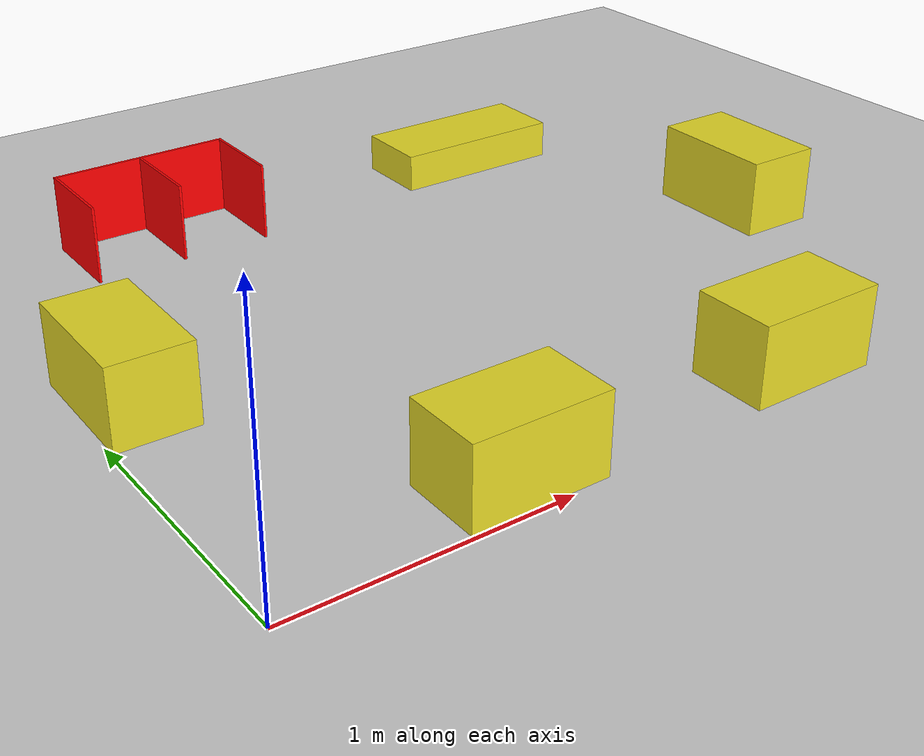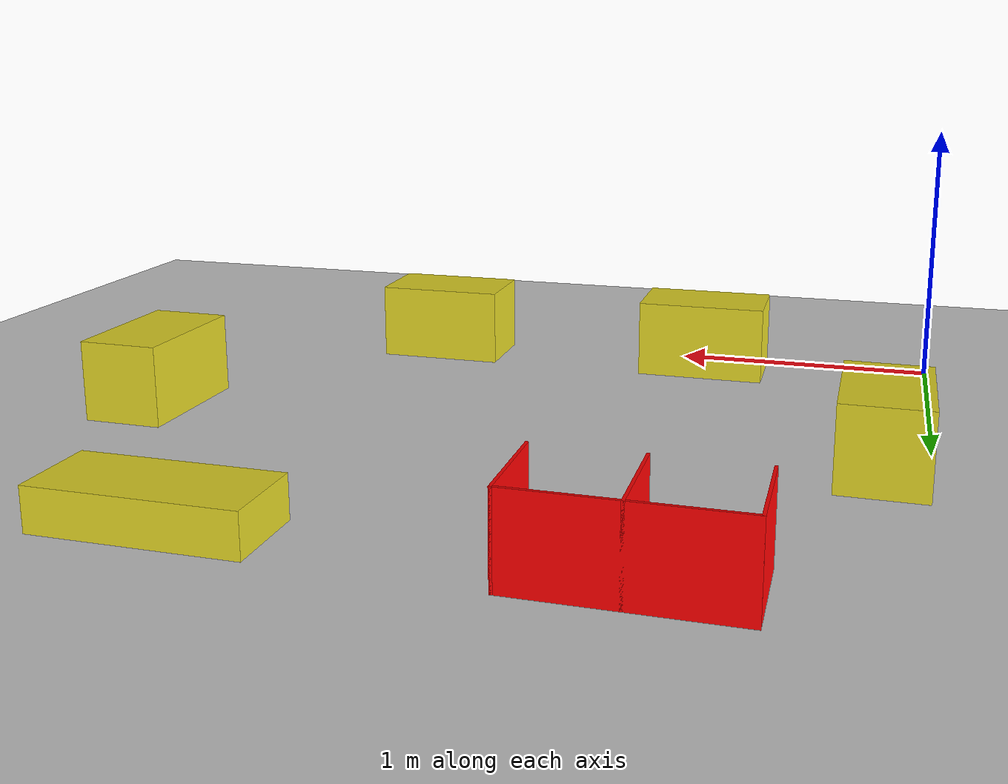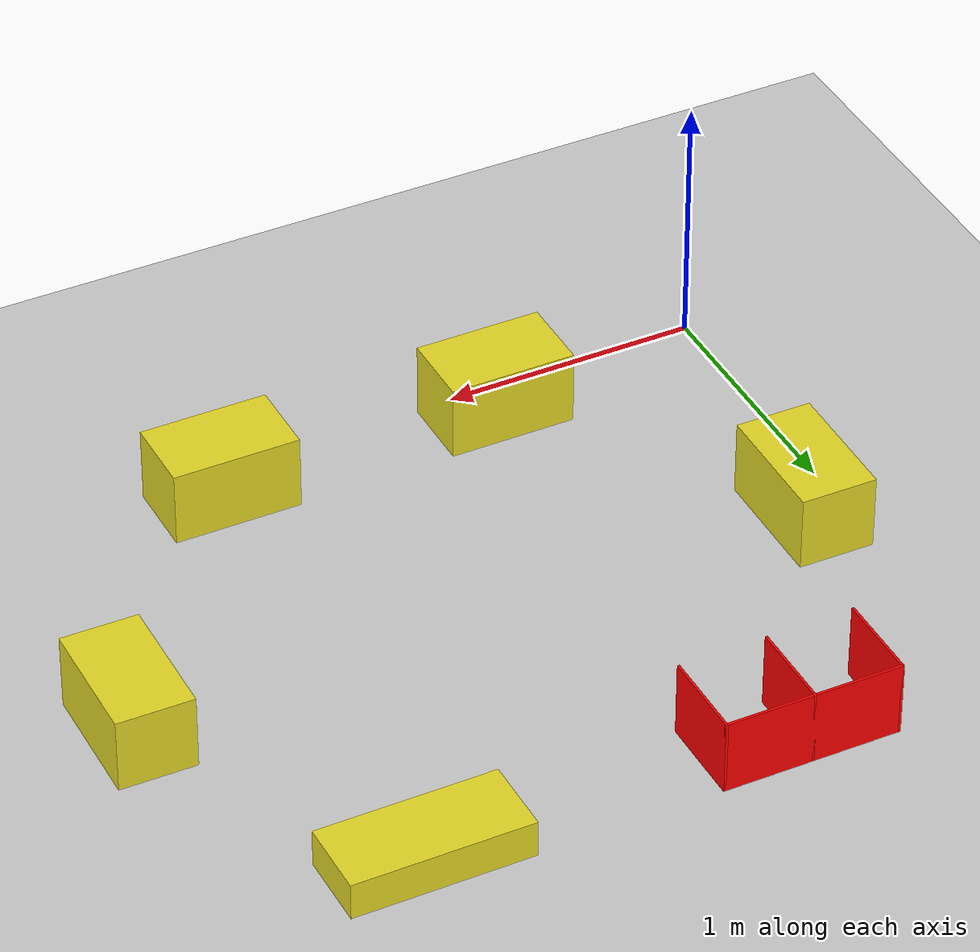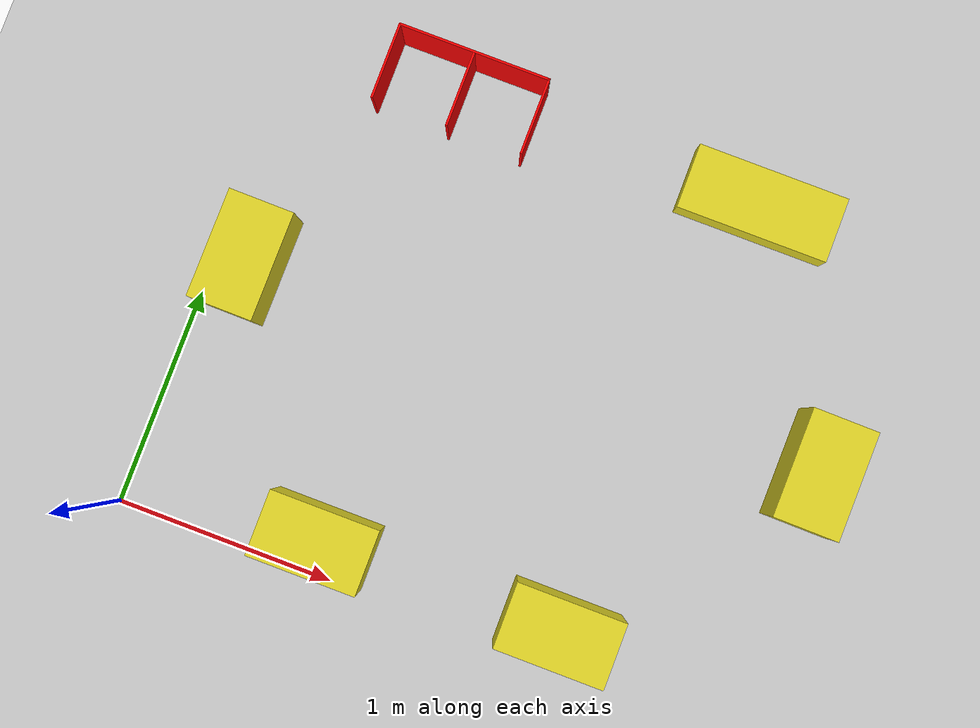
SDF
<sdf version="1.7">
 <world name="default">
  <light name="sun" type="directional">
   <pose>0 0 10 0 -0 0</pose>
   <diffuse>0.8 0.8 0.8 1</diffuse>
   <specular>0.2 0.2 0.2 1</specular>
   <attenuation>
    <range>1000</range>
    <constant>0.9</constant>
    <linear>0.01</linear>
    <quadratic>0.001</quadratic>
   </attenuation>
   <direction>-0.5 0.1 -0.9</direction>
   <spot><inner_angle>0</inner_angle><outer_angle>0</outer_angle><falloff>0</falloff></spot>
  </light>
  <model name="ground_plane">
   <static>1</static>
   <link name="link">
    <collision name="collision">
     <geometry><plane><normal>0 0 1</normal><size>100 100</size></plane></geometry>
     <surface><friction><ode><mu>100</mu><mu2>50</mu2></ode></friction></surface>
    </collision>
    <visual name="visual">
     <cast_shadows>0</cast_shadows>
     <geometry><plane><normal>0 0 1</normal><size>100 100</size></plane></geometry>
     <material>
      <script><uri>file://media/materials/scripts/gazebo.material</uri><name>Gazebo/Grey</name></script>
     </material>
    </visual>
   </link>
  </model>
  <gravity>0 0 -9.8</gravity>
  <magnetic_field>6e-06 2.3e-05 -4.2e-05</magnetic_field>
  <atmosphere type="adiabatic"/>
  <physics type="ode">
   <max_step_size>0.001</max_step_size>
   <real_time_factor>1</real_time_factor>
   <real_time_update_rate>1000</real_time_update_rate>
  </physics>
  <scene><ambient>0.4 0.4 0.4 1</ambient><background>0.7 0.7 0.7 1</background><shadows>1</shadows></scene>
  <audio><device>default</device></audio>
  <spherical_coordinates>
   <surface_model>EARTH_WGS84</surface_model>
   <latitude_deg>0</latitude_deg>
   <longitude_deg>0</longitude_deg>
   <elevation>0</elevation>
   <heading_deg>0</heading_deg>
  </spherical_coordinates>
  <model name="Task1">
   <link name="link_1">
    <inertial>
     <mass>1</mass>
     <inertia>
      <ixx>0.166667</ixx>
      <ixy>0</ixy>
      <ixz>0</ixz>
      <iyy>0.166667</iyy>
      <iyz>0</iyz>
      <izz>0.166667</izz>
     </inertia>
    </inertial>
    <pose>-0.271802 0.003194 0.15 0 0 -1.58255</pose>
    <visual name="visual">
     <geometry><box><size>0.5 0.3 0.3</size></box></geometry>
     <material>
      <lighting>1</lighting>
      <script><uri>file://media/materials/scripts/gazebo.material</uri><name>Gazebo/Yellow</name></script>
      <shader type="pixel"><normal_map>__default__</normal_map></shader>
      <ambient>0 0 1 1</ambient>
      <diffuse>0.7 0.7 0.7 1</diffuse>
      <specular>0.01 0.01 0.01 1</specular>
      <emissive>0 0 0 1</emissive>
     </material>
    </visual>
    <collision name="collision">
     <geometry><box><size>0.5 0.3 0.3</size></box></geometry>
     <surface>
      <friction>
       <ode><mu>1</mu><mu2>1</mu2><fdir1>0 0 0</fdir1><slip1>0</slip1><slip2>0</slip2></ode>
       <torsional>
        <coefficient>1</coefficient>
        <patch_radius>0</patch_radius>
        <surface_radius>0</surface_radius>
        <use_patch_radius>1</use_patch_radius>
        <ode><slip>0</slip></ode>
       </torsional>
      </friction>
      <bounce><restitution_coefficient>0</restitution_coefficient><threshold>1e+06</threshold></bounce>
      <contact>
       <collide_without_contact>0</collide_without_contact>
       <collide_without_contact_bitmask>1</collide_without_contact_bitmask>
       <collide_bitmask>1</collide_bitmask>
       <ode>
        <soft_cfm>0</soft_cfm>
        <soft_erp>0.2</soft_erp>
        <kp>1e+13</kp>
        <kd>1</kd>
        <max_vel>0.01</max_vel>
        <min_depth>0</min_depth>
       </ode>
       <bullet>
        <split_impulse>1</split_impulse>
        <split_impulse_penetration_threshold>-0.01</split_impulse_penetration_threshold>
        <soft_cfm>0</soft_cfm>
        <soft_erp>0.2</soft_erp>
        <kp>1e+13</kp>
        <kd>1</kd>
       </bullet>
      </contact>
     </surface>
    </collision>
   </link>
   <static>0</static>
   <pose>3.10821 1.20106 -0 0 -0 0</pose>
  </model>
  <model name="Task2">
   <link name="link_1">
    <inertial>
     <mass>1</mass>
     <inertia>
      <ixx>0.166667</ixx>
      <ixy>0</ixy>
      <ixz>0</ixz>
      <iyy>0.166667</iyy>
      <iyz>0</iyz>
      <izz>0.166667</izz>
     </inertia>
    </inertial>
    <pose>0 0 0.05 0 -0 0</pose>
    <visual name="visual">
     <geometry><box><size>0.5 0.3 0.3</size></box></geometry>
     <material>
      <lighting>1</lighting>
      <script><uri>file://media/materials/scripts/gazebo.material</uri><name>Gazebo/Yellow</name></script>
      <shader type="pixel"><normal_map>__default__</normal_map></shader>
      <ambient>1 1 0 1</ambient>
      <diffuse>0.7 0.7 0.7 1</diffuse>
      <specular>0.01 0.01 0.01 1</specular>
      <emissive>0 0 0 1</emissive>
     </material>
    </visual>
    <collision name="collision">
     <geometry><box><size>0.5 0.3 0.3</size></box></geometry>
     <surface>
      <friction>
       <ode><mu>1</mu><mu2>1</mu2><fdir1>0 0 0</fdir1><slip1>0</slip1><slip2>0</slip2></ode>
       <torsional>
        <coefficient>1</coefficient>
        <patch_radius>0</patch_radius>
        <surface_radius>0</surface_radius>
        <use_patch_radius>1</use_patch_radius>
        <ode><slip>0</slip></ode>
       </torsional>
      </friction>
      <bounce><restitution_coefficient>0</restitution_coefficient><threshold>1e+06</threshold></bounce>
      <contact>
       <collide_without_contact>0</collide_without_contact>
       <collide_without_contact_bitmask>1</collide_without_contact_bitmask>
       <collide_bitmask>1</collide_bitmask>
       <ode>
        <soft_cfm>0</soft_cfm>
        <soft_erp>0.2</soft_erp>
        <kp>1e+13</kp>
        <kd>1</kd>
        <max_vel>0.01</max_vel>
        <min_depth>0</min_depth>
       </ode>
       <bullet>
        <split_impulse>1</split_impulse>
        <split_impulse_penetration_threshold>-0.01</split_impulse_penetration_threshold>
        <soft_cfm>0</soft_cfm>
        <soft_erp>0.2</soft_erp>
        <kp>1e+13</kp>
        <kd>1</kd>
       </bullet>
      </contact>
     </surface>
    </collision>
   </link>
   <static>0</static>
   <pose>2.01596 0.166501 0.1 0 -0 0</pose>
  </model>
  <model name="Task3">
   <link name="link_1">
    <inertial>
     <mass>1</mass>
     <inertia>
      <ixx>0.166667</ixx>
      <ixy>0</ixy>
      <ixz>0</ixz>
      <iyy>0.166667</iyy>
      <iyz>0</iyz>
      <izz>0.166667</izz>
     </inertia>
    </inertial>
    <pose>0 0 0.05 0 -0 0</pose>
    <visual name="visual">
     <geometry><box><size>0.5 0.3 0.3</size></box></geometry>
     <material>
      <lighting>1</lighting>
      <script><uri>file://media/materials/scripts/gazebo.material</uri><name>Gazebo/Yellow</name></script>
      <shader type="pixel"><normal_map>__default__</normal_map></shader>
      <ambient>0.5 0 0.5 1</ambient>
      <diffuse>0.7 0.7 0.7 1</diffuse>
      <specular>0.01 0.01 0.01 1</specular>
      <emissive>0 0 0 1</emissive>
     </material>
    </visual>
    <collision name="collision">
     <geometry><box><size>0.5 0.3 0.3</size></box></geometry>
     <surface>
      <friction>
       <ode><mu>1</mu><mu2>1</mu2><fdir1>0 0 0</fdir1><slip1>0</slip1><slip2>0</slip2></ode>
       <torsional>
        <coefficient>1</coefficient>
        <patch_radius>0</patch_radius>
        <surface_radius>0</surface_radius>
        <use_patch_radius>1</use_patch_radius>
        <ode><slip>0</slip></ode>
       </torsional>
      </friction>
      <bounce><restitution_coefficient>0</restitution_coefficient><threshold>1e+06</threshold></bounce>
      <contact>
       <collide_without_contact>0</collide_without_contact>
       <collide_without_contact_bitmask>1</collide_without_contact_bitmask>
       <collide_bitmask>1</collide_bitmask>
       <ode>
        <soft_cfm>0</soft_cfm>
        <soft_erp>0.2</soft_erp>
        <kp>1e+13</kp>
        <kd>1</kd>
        <max_vel>0.01</max_vel>
        <min_depth>0</min_depth>
       </ode>
       <bullet>
        <split_impulse>1</split_impulse>
        <split_impulse_penetration_threshold>-0.01</split_impulse_penetration_threshold>
        <soft_cfm>0</soft_cfm>
        <soft_erp>0.2</soft_erp>
        <kp>1e+13</kp>
        <kd>1</kd>
       </bullet>
      </contact>
     </surface>
    </collision>
   </link>
   <static>0</static>
   <pose>0.89366 0.161385 0.1 -0 -1e-06 0.000516</pose>
  </model>
  <model name="Task4">
   <link name="link_1">
    <inertial>
     <mass>1</mass>
     <inertia>
      <ixx>0.166667</ixx>
      <ixy>0</ixy>
      <ixz>0</ixz>
      <iyy>0.166667</iyy>
      <iyz>0</iyz>
      <izz>0.166667</izz>
     </inertia>
    </inertial>
    <pose>-0.271802 0.003194 0.15 0 0 -1.58255</pose>
    <visual name="visual">
     <geometry><box><size>0.5 0.3 0.3</size></box></geometry>
     <material>
      <lighting>1</lighting>
      <script><uri>file://media/materials/scripts/gazebo.material</uri><name>Gazebo/Yellow</name></script>
      <shader type="pixel"><normal_map>__default__</normal_map></shader>
      <ambient>0.5 1 0.5 1</ambient>
      <diffuse>0.7 0.7 0.7 1</diffuse>
      <specular>0.01 0.01 0.01 1</specular>
      <emissive>0 0 0 1</emissive>
     </material>
    </visual>
    <collision name="collision">
     <geometry><box><size>0.5 0.3 0.3</size></box></geometry>
     <surface>
      <friction>
       <ode><mu>1</mu><mu2>1</mu2><fdir1>0 0 0</fdir1><slip1>0</slip1><slip2>0</slip2></ode>
       <torsional>
        <coefficient>1</coefficient>
        <patch_radius>0</patch_radius>
        <surface_radius>0</surface_radius>
        <use_patch_radius>1</use_patch_radius>
        <ode><slip>0</slip></ode>
       </torsional>
      </friction>
      <bounce><restitution_coefficient>0</restitution_coefficient><threshold>1e+06</threshold></bounce>
      <contact>
       <collide_without_contact>0</collide_without_contact>
       <collide_without_contact_bitmask>1</collide_without_contact_bitmask>
       <collide_bitmask>1</collide_bitmask>
       <ode>
        <soft_cfm>0</soft_cfm>
        <soft_erp>0.2</soft_erp>
        <kp>1e+13</kp>
        <kd>1</kd>
        <max_vel>0.01</max_vel>
        <min_depth>0</min_depth>
       </ode>
       <bullet>
        <split_impulse>1</split_impulse>
        <split_impulse_penetration_threshold>-0.01</split_impulse_penetration_threshold>
        <soft_cfm>0</soft_cfm>
        <soft_erp>0.2</soft_erp>
        <kp>1e+13</kp>
        <kd>1</kd>
       </bullet>
      </contact>
     </surface>
    </collision>
   </link>
   <static>0</static>
   <pose>0.431324 1.19946 -0 0 -0 0.00267</pose>
  </model>
  <model name="ChargingStation">
   <link name="link_2">
    <inertial>
     <mass>1</mass>
     <inertia>
      <ixx>0.166667</ixx>
      <ixy>0</ixy>
      <ixz>0</ixz>
      <iyy>0.166667</iyy>
      <iyz>0</iyz>
      <izz>0.166667</izz>
     </inertia>
    </inertial>
    <pose>0 -0.1275 0 0 -0 0</pose>
    <visual name="visual">
     <geometry><box><size>0.7 0.01 0.3</size></box></geometry>
     <material>
      <lighting>1</lighting>
      <script><uri>file://media/materials/scripts/gazebo.material</uri><name>Gazebo/Grey</name></script>
      <shader type="pixel"><normal_map>__default__</normal_map></shader>
      <ambient>1 0 0 1</ambient>
      <diffuse>0.7 0.7 0.7 1</diffuse>
      <specular>0.01 0.01 0.01 1</specular>
      <emissive>0 0 0 1</emissive>
     </material>
    </visual>
    <collision name="collision">
     <geometry><box><size>0.7 0.01 0.3</size></box></geometry>
     <surface>
      <friction>
       <ode><mu>1</mu><mu2>1</mu2><fdir1>0 0 0</fdir1><slip1>0</slip1><slip2>0</slip2></ode>
       <torsional>
        <coefficient>1</coefficient>
        <patch_radius>0</patch_radius>
        <surface_radius>0</surface_radius>
        <use_patch_radius>1</use_patch_radius>
        <ode><slip>0</slip></ode>
       </torsional>
      </friction>
      <bounce><restitution_coefficient>0</restitution_coefficient><threshold>1e+06</threshold></bounce>
      <contact>
       <collide_without_contact>0</collide_without_contact>
       <collide_without_contact_bitmask>1</collide_without_contact_bitmask>
       <collide_bitmask>1</collide_bitmask>
       <ode>
        <soft_cfm>0</soft_cfm>
        <soft_erp>0.2</soft_erp>
        <kp>1e+13</kp>
        <kd>1</kd>
        <max_vel>0.01</max_vel>
        <min_depth>0</min_depth>
       </ode>
       <bullet>
        <split_impulse>1</split_impulse>
        <split_impulse_penetration_threshold>-0.01</split_impulse_penetration_threshold>
        <soft_cfm>0</soft_cfm>
        <soft_erp>0.2</soft_erp>
        <kp>1e+13</kp>
        <kd>1</kd>
       </bullet>
      </contact>
     </surface>
    </collision>
   </link>
   <link name="link_3">
    <inertial>
     <mass>1</mass>
     <inertia>
      <ixx>0.166667</ixx>
      <ixy>0</ixy>
      <ixz>0</ixz>
      <iyy>0.166667</iyy>
      <iyz>0</iyz>
      <izz>0.166667</izz>
     </inertia>
    </inertial>
    <pose>0.345 0.0425 0 0 -0 0</pose>
    <visual name="visual">
     <geometry><box><size>0.01 0.35 0.3</size></box></geometry>
     <material>
      <lighting>1</lighting>
      <script><uri>file://media/materials/scripts/gazebo.material</uri><name>Gazebo/Grey</name></script>
      <shader type="pixel"><normal_map>__default__</normal_map></shader>
      <ambient>1 0 0 1</ambient>
      <diffuse>0.7 0.7 0.7 1</diffuse>
      <specular>0.01 0.01 0.01 1</specular>
      <emissive>0 0 0 1</emissive>
     </material>
    </visual>
    <collision name="collision">
     <geometry><box><size>0.01 0.35 0.3</size></box></geometry>
     <surface>
      <friction>
       <ode><mu>1</mu><mu2>1</mu2><fdir1>0 0 0</fdir1><slip1>0</slip1><slip2>0</slip2></ode>
       <torsional>
        <coefficient>1</coefficient>
        <patch_radius>0</patch_radius>
        <surface_radius>0</surface_radius>
        <use_patch_radius>1</use_patch_radius>
        <ode><slip>0</slip></ode>
       </torsional>
      </friction>
      <bounce><restitution_coefficient>0</restitution_coefficient><threshold>1e+06</threshold></bounce>
      <contact>
       <collide_without_contact>0</collide_without_contact>
       <collide_without_contact_bitmask>1</collide_without_contact_bitmask>
       <collide_bitmask>1</collide_bitmask>
       <ode>
        <soft_cfm>0</soft_cfm>
        <soft_erp>0.2</soft_erp>
        <kp>1e+13</kp>
        <kd>1</kd>
        <max_vel>0.01</max_vel>
        <min_depth>0</min_depth>
       </ode>
       <bullet>
        <split_impulse>1</split_impulse>
        <split_impulse_penetration_threshold>-0.01</split_impulse_penetration_threshold>
        <soft_cfm>0</soft_cfm>
        <soft_erp>0.2</soft_erp>
        <kp>1e+13</kp>
        <kd>1</kd>
       </bullet>
      </contact>
     </surface>
    </collision>
   </link>
   <link name="link_3_clone">
    <inertial>
     <mass>1</mass>
     <inertia>
      <ixx>0.166667</ixx>
      <ixy>0</ixy>
      <ixz>0</ixz>
      <iyy>0.166667</iyy>
      <iyz>0</iyz>
      <izz>0.166667</izz>
     </inertia>
    </inertial>
    <pose>0 0.0425 0 0 -0 0</pose>
    <visual name="visual">
     <geometry><box><size>0.01 0.35 0.3</size></box></geometry>
     <material>
      <lighting>1</lighting>
      <script><uri>file://media/materials/scripts/gazebo.material</uri><name>Gazebo/Grey</name></script>
      <shader type="pixel"><normal_map>__default__</normal_map></shader>
      <ambient>1 0 0 1</ambient>
      <diffuse>0.7 0.7 0.7 1</diffuse>
      <specular>0.01 0.01 0.01 1</specular>
      <emissive>0 0 0 1</emissive>
     </material>
    </visual>
    <collision name="collision">
     <geometry><box><size>0.01 0.35 0.3</size></box></geometry>
     <surface>
      <friction>
       <ode><mu>1</mu><mu2>1</mu2><fdir1>0 0 0</fdir1><slip1>0</slip1><slip2>0</slip2></ode>
       <torsional>
        <coefficient>1</coefficient>
        <patch_radius>0</patch_radius>
        <surface_radius>0</surface_radius>
        <use_patch_radius>1</use_patch_radius>
        <ode><slip>0</slip></ode>
       </torsional>
      </friction>
      <bounce><restitution_coefficient>0</restitution_coefficient><threshold>1e+06</threshold></bounce>
      <contact>
       <collide_without_contact>0</collide_without_contact>
       <collide_without_contact_bitmask>1</collide_without_contact_bitmask>
       <collide_bitmask>1</collide_bitmask>
       <ode>
        <soft_cfm>0</soft_cfm>
        <soft_erp>0.2</soft_erp>
        <kp>1e+13</kp>
        <kd>1</kd>
        <max_vel>0.01</max_vel>
        <min_depth>0</min_depth>
       </ode>
       <bullet>
        <split_impulse>1</split_impulse>
        <split_impulse_penetration_threshold>-0.01</split_impulse_penetration_threshold>
        <soft_cfm>0</soft_cfm>
        <soft_erp>0.2</soft_erp>
        <kp>1e+13</kp>
        <kd>1</kd>
       </bullet>
      </contact>
     </surface>
    </collision>
   </link>
   <link name="link_3_clone_0">
    <inertial>
     <mass>1</mass>
     <inertia>
      <ixx>0.166667</ixx>
      <ixy>0</ixy>
      <ixz>0</ixz>
      <iyy>0.166667</iyy>
      <iyz>0</iyz>
      <izz>0.166667</izz>
     </inertia>
    </inertial>
    <pose>-0.345 0.0425 0 0 -0 0</pose>
    <visual name="visual">
     <geometry><box><size>0.01 0.35 0.3</size></box></geometry>
     <material>
      <lighting>1</lighting>
      <script><uri>file://media/materials/scripts/gazebo.material</uri><name>Gazebo/Grey</name></script>
      <shader type="pixel"><normal_map>__default__</normal_map></shader>
      <ambient>1 0 0 1</ambient>
      <diffuse>0.7 0.7 0.7 1</diffuse>
      <specular>0.01 0.01 0.01 1</specular>
      <emissive>0 0 0 1</emissive>
     </material>
    </visual>
    <collision name="collision">
     <geometry><box><size>0.01 0.35 0.3</size></box></geometry>
     <surface>
      <friction>
       <ode><mu>1</mu><mu2>1</mu2><fdir1>0 0 0</fdir1><slip1>0</slip1><slip2>0</slip2></ode>
       <torsional>
        <coefficient>1</coefficient>
        <patch_radius>0</patch_radius>
        <surface_radius>0</surface_radius>
        <use_patch_radius>1</use_patch_radius>
        <ode><slip>0</slip></ode>
       </torsional>
      </friction>
      <bounce><restitution_coefficient>0</restitution_coefficient><threshold>1e+06</threshold></bounce>
      <contact>
       <collide_without_contact>0</collide_without_contact>
       <collide_without_contact_bitmask>1</collide_without_contact_bitmask>
       <collide_bitmask>1</collide_bitmask>
       <ode>
        <soft_cfm>0</soft_cfm>
        <soft_erp>0.2</soft_erp>
        <kp>1e+13</kp>
        <kd>1</kd>
        <max_vel>0.01</max_vel>
        <min_depth>0</min_depth>
       </ode>
       <bullet>
        <split_impulse>1</split_impulse>
        <split_impulse_penetration_threshold>-0.01</split_impulse_penetration_threshold>
        <soft_cfm>0</soft_cfm>
        <soft_erp>0.2</soft_erp>
        <kp>1e+13</kp>
        <kd>1</kd>
       </bullet>
      </contact>
     </surface>
    </collision>
   </link>
   <joint name="link_2_JOINT_4" type="fixed">
    <parent>link_2</parent>
    <child>link_3</child>
    <physics>
     <ode><limit><cfm>0</cfm><erp>0.2</erp></limit><suspension><cfm>0</cfm><erp>0.2</erp></suspension></ode>
    </physics>
   </joint>
   <joint name="link_2_JOINT_5" type="fixed">
    <parent>link_2</parent>
    <child>link_3_clone</child>
    <physics>
     <ode><limit><cfm>0</cfm><erp>0.2</erp></limit><suspension><cfm>0</cfm><erp>0.2</erp></suspension></ode>
    </physics>
   </joint>
   <joint name="link_2_JOINT_6" type="revolute">
    <parent>link_2</parent>
    <child>link_3_clone_0</child>
    <axis>
     <xyz>1 0 0</xyz>
     <limit>
      <lower>-1.79769e+308</lower>
      <upper>1.79769e+308</upper>
      <effort>-1</effort>
      <velocity>-1</velocity>
     </limit>
     <dynamics>
      <spring_reference>0</spring_reference>
      <spring_stiffness>0</spring_stiffness>
      <damping>0</damping>
     </dynamics>
    </axis>
    <physics>
     <ode><limit><cfm>0</cfm><erp>0.2</erp></limit><suspension><cfm>0</cfm><erp>0.2</erp></suspension></ode>
    </physics>
   </joint>
   <static>0</static>
   <pose>0.789057 2.25524 0.15 2e-06 -1e-06 3.14132</pose>
  </model>
  <model name="LoadingPort">
   <link name="link_1">
    <inertial>
     <mass>1</mass>
     <inertia>
      <ixx>0.166667</ixx>
      <ixy>0</ixy>
      <ixz>0</ixz>
      <iyy>0.166667</iyy>
      <iyz>0</iyz>
      <izz>0.166667</izz>
     </inertia>
    </inertial>
    <visual name="visual">
     <geometry><box><size>0.7 0.3 0.15</size></box></geometry>
     <material>
      <lighting>1</lighting>
      <script><uri>file://media/materials/scripts/gazebo.material</uri><name>Gazebo/Yellow</name></script>
      <shader type="pixel"><normal_map>__default__</normal_map></shader>
      <ambient>0.77 0.643 0.518 1</ambient>
      <diffuse>0.7 0.7 0.7 1</diffuse>
      <specular>0.01 0.01 0.01 1</specular>
      <emissive>0 0 0 1</emissive>
     </material>
    </visual>
    <collision name="collision">
     <geometry><box><size>0.7 0.3 0.15</size></box></geometry>
     <surface>
      <friction>
       <ode><mu>1</mu><mu2>1</mu2><fdir1>0 0 0</fdir1><slip1>0</slip1><slip2>0</slip2></ode>
       <torsional>
        <coefficient>1</coefficient>
        <patch_radius>0</patch_radius>
        <surface_radius>0</surface_radius>
        <use_patch_radius>1</use_patch_radius>
        <ode><slip>0</slip></ode>
       </torsional>
      </friction>
      <bounce><restitution_coefficient>0</restitution_coefficient><threshold>1e+06</threshold></bounce>
      <contact>
       <collide_without_contact>0</collide_without_contact>
       <collide_without_contact_bitmask>1</collide_without_contact_bitmask>
       <collide_bitmask>1</collide_bitmask>
       <ode>
        <soft_cfm>0</soft_cfm>
        <soft_erp>0.2</soft_erp>
        <kp>1e+13</kp>
        <kd>1</kd>
        <max_vel>0.01</max_vel>
        <min_depth>0</min_depth>
       </ode>
       <bullet>
        <split_impulse>1</split_impulse>
        <split_impulse_penetration_threshold>-0.01</split_impulse_penetration_threshold>
        <soft_cfm>0</soft_cfm>
        <soft_erp>0.2</soft_erp>
        <kp>1e+13</kp>
        <kd>1</kd>
       </bullet>
      </contact>
     </surface>
    </collision>
   </link>
   <static>0</static>
   <pose>2.20309 2.23755 0.075 0 -0 0</pose>
  </model>
 </world>
</sdf>
